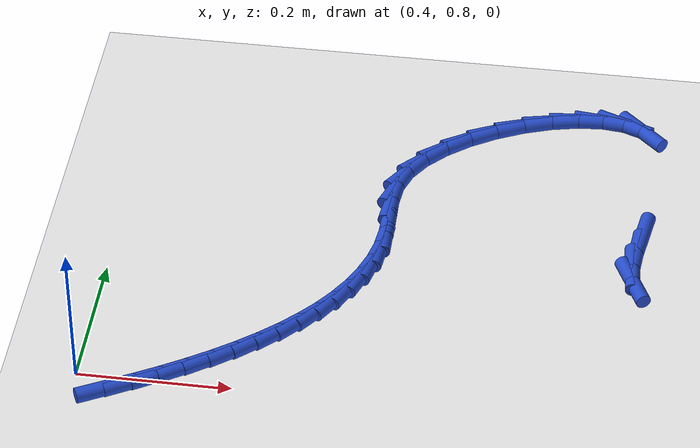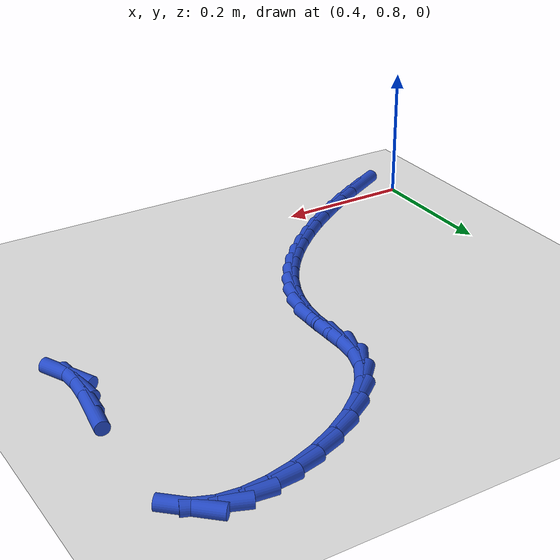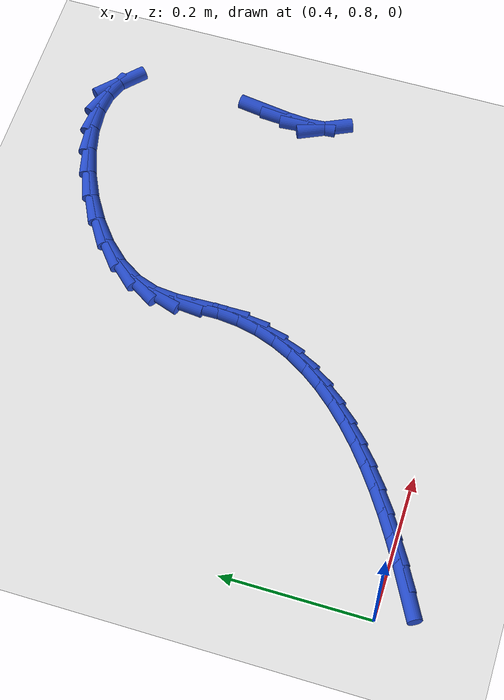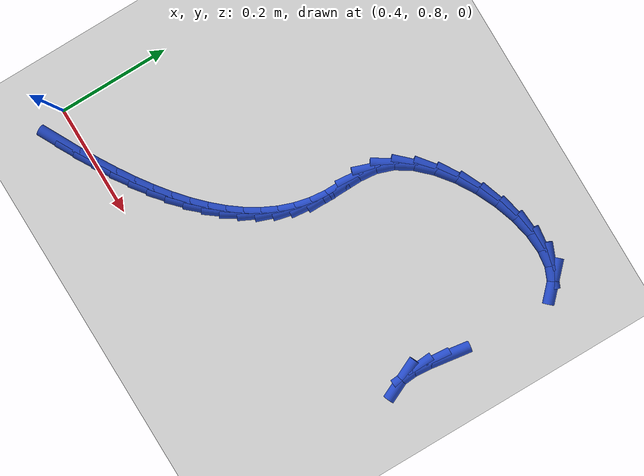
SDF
<sdf version="1.6">
 <world name="default">
  <model name="ground_plane">
   <static>1</static>
   <link name="link">
    <collision name="collision">
     <geometry><plane><normal>0 0 1</normal><size>100 100</size></plane></geometry>
     <surface><friction><ode><mu>100</mu><mu2>50</mu2></ode></friction></surface>
    </collision>
    <visual name="visual">
     <cast_shadows>0</cast_shadows>
     <geometry><plane><normal>0 0 1</normal><size>100 100</size></plane></geometry>
     <material>
      <script><uri>file://media/materials/scripts/gazebo.material</uri><name>Gazebo/WhiteGlow</name></script>
     </material>
    </visual>
   </link>
  </model>
  <model name="line">
   <link name="link_31">
    <pose>0.44526683313413923 0.7704105948982635 0.01 0 1.57 0.4875602864950086</pose>
    <collision name="collision">
     <geometry><cylinder><radius>0.01</radius><length>0.08</length></cylinder></geometry>
    </collision>
    <visual name="visual">
     <material>
      <script><name>Gazebo/Blue</name><uri>file://media/materials/scripts/gazebo.material</uri></script>
     </material>
     <geometry><cylinder><radius>0.01</radius><length>0.08</length></cylinder></geometry>
    </visual>
   </link>
   <link name="link_32">
    <pose>0.4766525256832046 0.7870531218273707 0.01 0 1.57 0.5130235854854662</pose>
    <collision name="collision">
     <geometry><cylinder><radius>0.01</radius><length>0.08</length></cylinder></geometry>
    </collision>
    <visual name="visual">
     <material>
      <script><name>Gazebo/Blue</name><uri>file://media/materials/scripts/gazebo.material</uri></script>
     </material>
     <geometry><cylinder><radius>0.01</radius><length>0.08</length></cylinder></geometry>
    </visual>
   </link>
   <link name="link_33">
    <pose>0.5074568264130951 0.8044062645603404 0.01 0 1.57 0.5427303918857371</pose>
    <collision name="collision">
     <geometry><cylinder><radius>0.01</radius><length>0.08</length></cylinder></geometry>
    </collision>
    <visual name="visual">
     <material>
      <script><name>Gazebo/Blue</name><uri>file://media/materials/scripts/gazebo.material</uri></script>
     </material>
     <geometry><cylinder><radius>0.01</radius><length>0.08</length></cylinder></geometry>
    </visual>
   </link>
   <link name="link_34">
    <pose>0.5374586513402968 0.8225017807163357 0.01 0 1.57 0.5771941331386569</pose>
    <collision name="collision">
     <geometry><cylinder><radius>0.01</radius><length>0.08</length></cylinder></geometry>
    </collision>
    <visual name="visual">
     <material>
      <script><name>Gazebo/Blue</name><uri>file://media/materials/scripts/gazebo.material</uri></script>
     </material>
     <geometry><cylinder><radius>0.01</radius><length>0.08</length></cylinder></geometry>
    </visual>
   </link>
   <link name="link_35">
    <pose>0.5664369164812953 0.8413714279145198 0.01 0 1.57 0.6170381671087958</pose>
    <collision name="collision">
     <geometry><cylinder><radius>0.01</radius><length>0.08</length></cylinder></geometry>
    </collision>
    <visual name="visual">
     <material>
      <script><name>Gazebo/Blue</name><uri>file://media/materials/scripts/gazebo.material</uri></script>
     </material>
     <geometry><cylinder><radius>0.01</radius><length>0.08</length></cylinder></geometry>
    </visual>
   </link>
   <link name="link_36">
    <pose>0.5941705378525772 0.8610469637740563 0.01 0 1.57 0.6629994227871604</pose>
    <collision name="collision">
     <geometry><cylinder><radius>0.01</radius><length>0.08</length></cylinder></geometry>
    </collision>
    <visual name="visual">
     <material>
      <script><name>Gazebo/Blue</name><uri>file://media/materials/scripts/gazebo.material</uri></script>
     </material>
     <geometry><cylinder><radius>0.01</radius><length>0.08</length></cylinder></geometry>
    </visual>
   </link>
   <link name="link_37">
    <pose>0.6204384314706277 0.8815601459141077 0.01 0 1.57 0.7159226816246992</pose>
    <collision name="collision">
     <geometry><cylinder><radius>0.01</radius><length>0.08</length></cylinder></geometry>
    </collision>
    <visual name="visual">
     <material>
      <script><name>Gazebo/Blue</name><uri>file://media/materials/scripts/gazebo.material</uri></script>
     </material>
     <geometry><cylinder><radius>0.01</radius><length>0.08</length></cylinder></geometry>
    </visual>
   </link>
   <link name="link_38">
    <pose>0.6450195133519329 0.9029427319538376 0.01 0 1.57 0.7767358986538571</pose>
    <collision name="collision">
     <geometry><cylinder><radius>0.01</radius><length>0.08</length></cylinder></geometry>
    </collision>
    <visual name="visual">
     <material>
      <script><name>Gazebo/Blue</name><uri>file://media/materials/scripts/gazebo.material</uri></script>
     </material>
     <geometry><cylinder><radius>0.01</radius><length>0.08</length></cylinder></geometry>
    </visual>
   </link>
   <link name="link_39">
    <pose>0.667692699512979 0.9252264795124091 0.01 0 1.57 0.8463920409993408</pose>
    <collision name="collision">
     <geometry><cylinder><radius>0.01</radius><length>0.08</length></cylinder></geometry>
    </collision>
    <visual name="visual">
     <material>
      <script><name>Gazebo/Blue</name><uri>file://media/materials/scripts/gazebo.material</uri></script>
     </material>
     <geometry><cylinder><radius>0.01</radius><length>0.08</length></cylinder></geometry>
    </visual>
   </link>
   <link name="link_40">
    <pose>0.6882369059702512 0.9484431462089848 0.01 0 1.57 0.9257583472496942</pose>
    <collision name="collision">
     <geometry><cylinder><radius>0.01</radius><length>0.08</length></cylinder></geometry>
    </collision>
    <visual name="visual">
     <material>
      <script><name>Gazebo/Blue</name><uri>file://media/materials/scripts/gazebo.material</uri></script>
     </material>
     <geometry><cylinder><radius>0.01</radius><length>0.08</length></cylinder></geometry>
    </visual>
   </link>
   <link name="link_41">
    <pose>0.7064310487402363 0.9726244896627291 0.01 0 1.57 1.0154342378449421</pose>
    <collision name="collision">
     <geometry><cylinder><radius>0.01</radius><length>0.08</length></cylinder></geometry>
    </collision>
    <visual name="visual">
     <material>
      <script><name>Gazebo/Blue</name><uri>file://media/materials/scripts/gazebo.material</uri></script>
     </material>
     <geometry><cylinder><radius>0.01</radius><length>0.08</length></cylinder></geometry>
    </visual>
   </link>
   <link name="link_42">
    <pose>0.7220540438394192 0.9978022674928039 0.01 0 1.57 1.1154934103453327</pose>
    <collision name="collision">
     <geometry><cylinder><radius>0.01</radius><length>0.08</length></cylinder></geometry>
    </collision>
    <visual name="visual">
     <material>
      <script><name>Gazebo/Blue</name><uri>file://media/materials/scripts/gazebo.material</uri></script>
     </material>
     <geometry><cylinder><radius>0.01</radius><length>0.08</length></cylinder></geometry>
    </visual>
   </link>
   <link name="link_43">
    <pose>0.7348848072842867 1.024008237318373 0.01 0 1.57 1.2251850060388396</pose>
    <collision name="collision">
     <geometry><cylinder><radius>0.01</radius><length>0.08</length></cylinder></geometry>
    </collision>
    <visual name="visual">
     <material>
      <script><name>Gazebo/Blue</name><uri>file://media/materials/scripts/gazebo.material</uri></script>
     </material>
     <geometry><cylinder><radius>0.01</radius><length>0.08</length></cylinder></geometry>
    </visual>
   </link>
   <link name="link_44">
    <pose>0.7447022550913243 1.0512741567585997 0.01 0 1.57 1.342692771393778</pose>
    <collision name="collision">
     <geometry><cylinder><radius>0.01</radius><length>0.08</length></cylinder></geometry>
    </collision>
    <visual name="visual">
     <material>
      <script><name>Gazebo/Blue</name><uri>file://media/materials/scripts/gazebo.material</uri></script>
     </material>
     <geometry><cylinder><radius>0.01</radius><length>0.08</length></cylinder></geometry>
    </visual>
   </link>
   <link name="link_45">
    <pose>0.7512853032770179 1.079631783432647 0.01 0 1.57 1.4651045094513409</pose>
    <collision name="collision">
     <geometry><cylinder><radius>0.01</radius><length>0.08</length></cylinder></geometry>
    </collision>
    <visual name="visual">
     <material>
      <script><name>Gazebo/Blue</name><uri>file://media/materials/scripts/gazebo.material</uri></script>
     </material>
     <geometry><cylinder><radius>0.01</radius><length>0.08</length></cylinder></geometry>
    </visual>
   </link>
   <link name="link_46">
    <pose>0.7544128678578532 1.1091128749596777 0.01 0 1.57 -1.565123118664342</pose>
    <collision name="collision">
     <geometry><cylinder><radius>0.01</radius><length>0.08</length></cylinder></geometry>
    </collision>
    <visual name="visual">
     <material>
      <script><name>Gazebo/Blue</name><uri>file://media/materials/scripts/gazebo.material</uri></script>
     </material>
     <geometry><cylinder><radius>0.01</radius><length>0.08</length></cylinder></geometry>
    </visual>
   </link>
   <link name="link_47">
    <pose>0.7542394287900196 1.1396841501728345 0.01 0 1.57 -1.551285245928476</pose>
    <collision name="collision">
     <geometry><cylinder><radius>0.01</radius><length>0.08</length></cylinder></geometry>
    </collision>
    <visual name="visual">
     <material>
      <script><name>Gazebo/Blue</name><uri>file://media/materials/scripts/gazebo.material</uri></script>
     </material>
     <geometry><cylinder><radius>0.01</radius><length>0.08</length></cylinder></geometry>
    </visual>
   </link>
   <link name="link_48">
    <pose>0.7536314149902414 1.1708426825280125 0.01 0 1.57 1.4739614110613546</pose>
    <collision name="collision">
     <geometry><cylinder><radius>0.01</radius><length>0.08</length></cylinder></geometry>
    </collision>
    <visual name="visual">
     <material>
      <script><name>Gazebo/Blue</name><uri>file://media/materials/scripts/gazebo.material</uri></script>
     </material>
     <geometry><cylinder><radius>0.01</radius><length>0.08</length></cylinder></geometry>
    </visual>
   </link>
   <link name="link_49">
    <pose>0.7566462715607866 1.20187928966512 0.01 0 1.57 1.2376302781974073</pose>
    <collision name="collision">
     <geometry><cylinder><radius>0.01</radius><length>0.08</length></cylinder></geometry>
    </collision>
    <visual name="visual">
     <material>
      <script><name>Gazebo/Blue</name><uri>file://media/materials/scripts/gazebo.material</uri></script>
     </material>
     <geometry><cylinder><radius>0.01</radius><length>0.08</length></cylinder></geometry>
    </visual>
   </link>
   <link name="link_50">
    <pose>0.7671012323210288 1.232090157320033 0.01 0 1.57 0.9969393964905722</pose>
    <collision name="collision">
     <geometry><cylinder><radius>0.01</radius><length>0.08</length></cylinder></geometry>
    </collision>
    <visual name="visual">
     <material>
      <script><name>Gazebo/Blue</name><uri>file://media/materials/scripts/gazebo.material</uri></script>
     </material>
     <geometry><cylinder><radius>0.01</radius><length>0.08</length></cylinder></geometry>
    </visual>
   </link>
   <link name="link_51">
    <pose>0.7856929306717021 1.2608510177882872 0.01 0 1.57 0.8135538663231653</pose>
    <collision name="collision">
     <geometry><cylinder><radius>0.01</radius><length>0.08</length></cylinder></geometry>
    </collision>
    <visual name="visual">
     <material>
      <script><name>Gazebo/Blue</name><uri>file://media/materials/scripts/gazebo.material</uri></script>
     </material>
     <geometry><cylinder><radius>0.01</radius><length>0.08</length></cylinder></geometry>
    </visual>
   </link>
   <link name="link_52">
    <pose>0.8109693052200629 1.2875923752860927 0.01 0 1.57 0.6703260207869093</pose>
    <collision name="collision">
     <geometry><cylinder><radius>0.01</radius><length>0.08</length></cylinder></geometry>
    </collision>
    <visual name="visual">
     <material>
      <script><name>Gazebo/Blue</name><uri>file://media/materials/scripts/gazebo.material</uri></script>
     </material>
     <geometry><cylinder><radius>0.01</radius><length>0.08</length></cylinder></geometry>
    </visual>
   </link>
   <link name="link_53">
    <pose>0.8414358769488511 1.311745815288275 0.01 0 1.57 0.5511061789342686</pose>
    <collision name="collision">
     <geometry><cylinder><radius>0.01</radius><length>0.08</length></cylinder></geometry>
    </collision>
    <visual name="visual">
     <material>
      <script><name>Gazebo/Blue</name><uri>file://media/materials/scripts/gazebo.material</uri></script>
     </material>
     <geometry><cylinder><radius>0.01</radius><length>0.08</length></cylinder></geometry>
    </visual>
   </link>
   <link name="link_54">
    <pose>0.8755981668408074 1.332742923269662 0.01 0 1.57 0.44344127174849596</pose>
    <collision name="collision">
     <geometry><cylinder><radius>0.01</radius><length>0.08</length></cylinder></geometry>
    </collision>
    <visual name="visual">
     <material>
      <script><name>Gazebo/Blue</name><uri>file://media/materials/scripts/gazebo.material</uri></script>
     </material>
     <geometry><cylinder><radius>0.01</radius><length>0.08</length></cylinder></geometry>
    </visual>
   </link>
   <link name="link_55">
    <pose>0.9119616958786724 1.3500152847050813 0.01 0 1.57 0.3367853414580079</pose>
    <collision name="collision">
     <geometry><cylinder><radius>0.01</radius><length>0.08</length></cylinder></geometry>
    </collision>
    <visual name="visual">
     <material>
      <script><name>Gazebo/Blue</name><uri>file://media/materials/scripts/gazebo.material</uri></script>
     </material>
     <geometry><cylinder><radius>0.01</radius><length>0.08</length></cylinder></geometry>
    </visual>
   </link>
   <link name="link_56">
    <pose>0.949031985045186 1.3629944850693592 0.01 0 1.57 0.2201085991333209</pose>
    <collision name="collision">
     <geometry><cylinder><radius>0.01</radius><length>0.08</length></cylinder></geometry>
    </collision>
    <visual name="visual">
     <material>
      <script><name>Gazebo/Blue</name><uri>file://media/materials/scripts/gazebo.material</uri></script>
     </material>
     <geometry><cylinder><radius>0.01</radius><length>0.08</length></cylinder></geometry>
    </visual>
   </link>
   <link name="link_57">
    <pose>0.9853145553230893 1.3711121098373238 0.01 0 1.57 0.07888318545375729</pose>
    <collision name="collision">
     <geometry><cylinder><radius>0.01</radius><length>0.08</length></cylinder></geometry>
    </collision>
    <visual name="visual">
     <material>
      <script><name>Gazebo/Blue</name><uri>file://media/materials/scripts/gazebo.material</uri></script>
     </material>
     <geometry><cylinder><radius>0.01</radius><length>0.08</length></cylinder></geometry>
    </visual>
   </link>
   <link name="link_58">
    <pose>1.0193149276951223 1.373799744483802 0.01 0 1.57 -0.10910717446356327</pose>
    <collision name="collision">
     <geometry><cylinder><radius>0.01</radius><length>0.08</length></cylinder></geometry>
    </collision>
    <visual name="visual">
     <material>
      <script><name>Gazebo/Blue</name><uri>file://media/materials/scripts/gazebo.material</uri></script>
     </material>
     <geometry><cylinder><radius>0.01</radius><length>0.08</length></cylinder></geometry>
    </visual>
   </link>
   <link name="link_59">
    <pose>1.0495386231440262 1.3704889744836213 0.01 0 1.57 -0.3769280588828411</pose>
    <collision name="collision">
     <geometry><cylinder><radius>0.01</radius><length>0.08</length></cylinder></geometry>
    </collision>
    <visual name="visual">
     <material>
      <script><name>Gazebo/Blue</name><uri>file://media/materials/scripts/gazebo.material</uri></script>
     </material>
     <geometry><cylinder><radius>0.01</radius><length>0.08</length></cylinder></geometry>
    </visual>
   </link>
   <link name="link_60">
    <pose>1.0744911626525406 1.3606113853116086 0.01 0 1.57 -0.7520310955173655</pose>
    <collision name="collision">
     <geometry><cylinder><radius>0.01</radius><length>0.08</length></cylinder></geometry>
    </collision>
    <visual name="visual">
     <material>
      <script><name>Gazebo/Blue</name><uri>file://media/materials/scripts/gazebo.material</uri></script>
     </material>
     <geometry><cylinder><radius>0.01</radius><length>0.08</length></cylinder></geometry>
    </visual>
   </link>
   <link name="link_67">
    <pose>1.0904634756917202 1.1443274236797534 0.01 0 1.57 1.4252083914165583</pose>
    <collision name="collision">
     <geometry><cylinder><radius>0.01</radius><length>0.08</length></cylinder></geometry>
    </collision>
    <visual name="visual">
     <material>
      <script><name>Gazebo/Blue</name><uri>file://media/materials/scripts/gazebo.material</uri></script>
     </material>
     <geometry><cylinder><radius>0.01</radius><length>0.08</length></cylinder></geometry>
    </visual>
   </link>
   <link name="link_68">
    <pose>1.0854571080123032 1.110183480484164 0.01 0 1.57 1.4958894476220779</pose>
    <collision name="collision">
     <geometry><cylinder><radius>0.01</radius><length>0.08</length></cylinder></geometry>
    </collision>
    <visual name="visual">
     <material>
      <script><name>Gazebo/Blue</name><uri>file://media/materials/scripts/gazebo.material</uri></script>
     </material>
     <geometry><cylinder><radius>0.01</radius><length>0.08</length></cylinder></geometry>
    </visual>
   </link>
   <link name="link_69">
    <pose>1.083207901215302 1.0802129564085219 0.01 0 1.57 -1.4865147421079121</pose>
    <collision name="collision">
     <geometry><cylinder><radius>0.01</radius><length>0.08</length></cylinder></geometry>
    </collision>
    <visual name="visual">
     <material>
      <script><name>Gazebo/Blue</name><uri>file://media/materials/scripts/gazebo.material</uri></script>
     </material>
     <geometry><cylinder><radius>0.01</radius><length>0.08</length></cylinder></geometry>
    </visual>
   </link>
   <link name="link_70">
    <pose>1.0852466319491936 1.0560807434571624 0.01 0 1.57 -1.131106478545082</pose>
    <collision name="collision">
     <geometry><cylinder><radius>0.01</radius><length>0.08</length></cylinder></geometry>
    </collision>
    <visual name="visual">
     <material>
      <script><name>Gazebo/Blue</name><uri>file://media/materials/scripts/gazebo.material</uri></script>
     </material>
     <geometry><cylinder><radius>0.01</radius><length>0.08</length></cylinder></geometry>
    </visual>
   </link>
  </model>
 </world>
</sdf>
